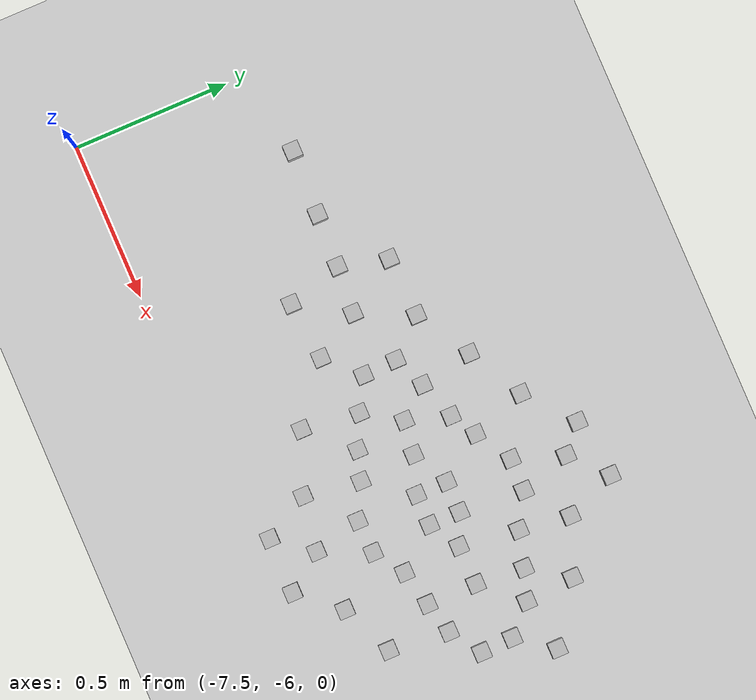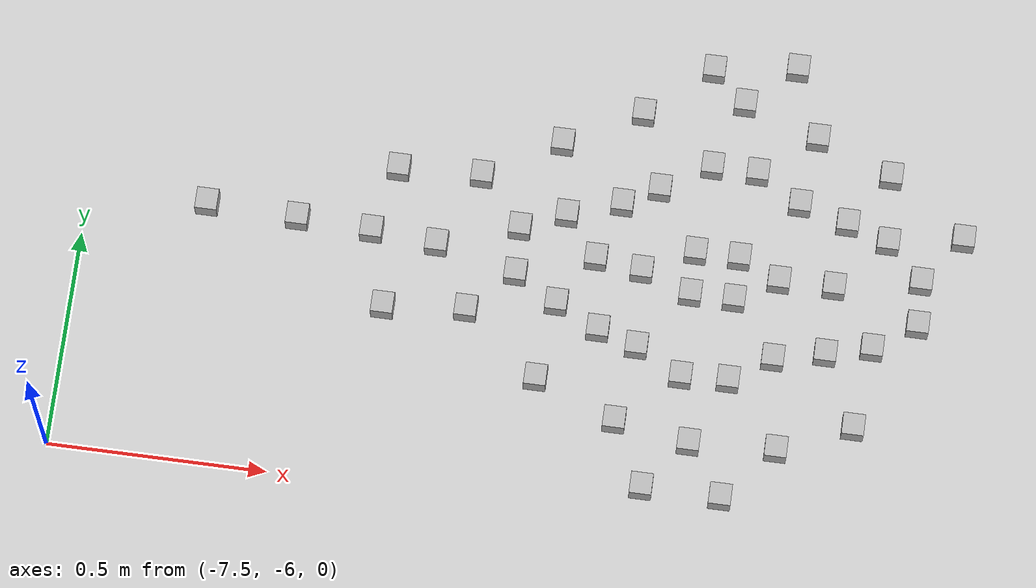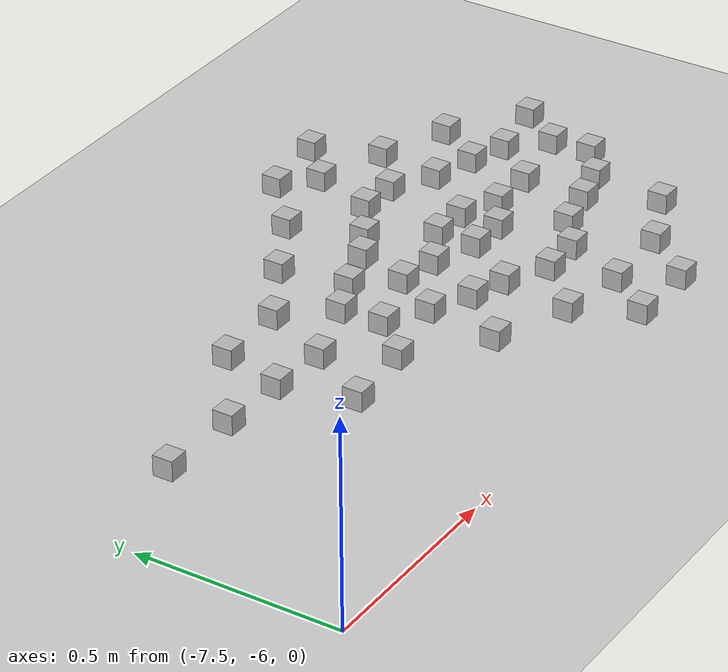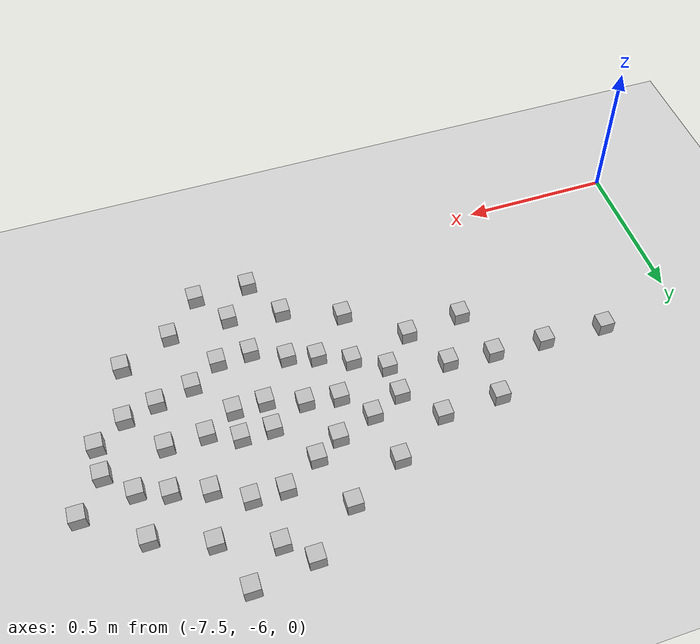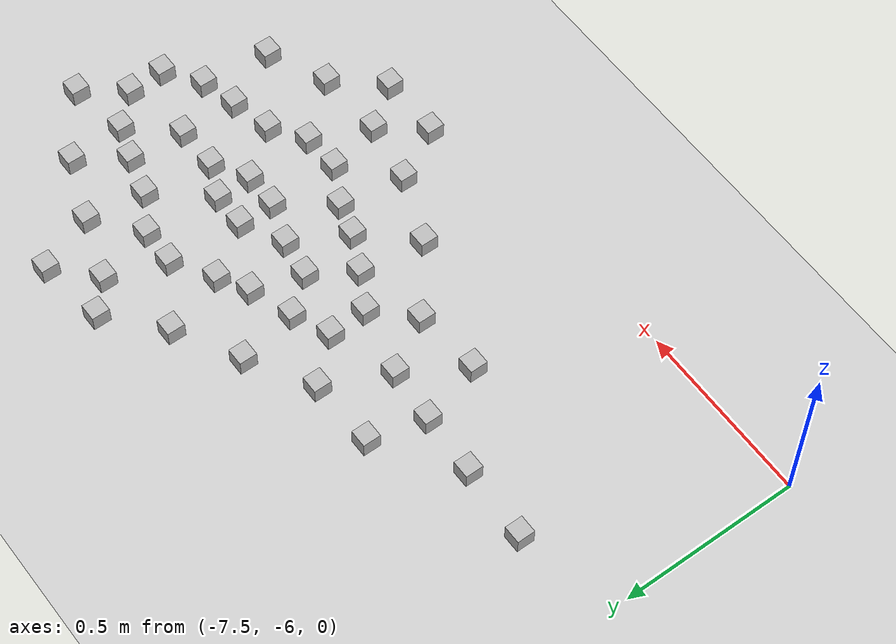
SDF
<sdf version="1.4">
 <world name="default">
  <model name="ground_plane">
   <static>1</static>
   <link name="link">
    <collision name="collision">
     <geometry><plane><normal>0 0 1</normal><size>100 100</size></plane></geometry>
     <surface><friction><ode><mu>100</mu><mu2>50</mu2></ode></friction></surface>
    </collision>
    <visual name="visual">
     <cast_shadows>0</cast_shadows>
     <geometry><plane><normal>0 0 1</normal><size>100 100</size></plane></geometry>
     <material>
      <script><uri>file://media/materials/scripts/gazebo.material</uri><name>Gazebo/Grey</name></script>
     </material>
    </visual>
    <velocity_decay><linear>0</linear><angular>0</angular></velocity_decay>
   </link>
  </model>
  <model name="at3">
   <static>0</static>
   <link name="link">
    <inertial>
     <mass>0.01</mass>
     <inertia><ixx>4e-05</ixx><ixy>0</ixy><ixz>0</ixz><iyy>4e-05</iyy><iyz>0</iyz><izz>4e-05</izz></inertia>
    </inertial>
    <visual name="visual">
     <geometry><box><size>0.05 0.05 0.05</size></box></geometry>
     <material>
      <script>
       <uri>model://at0/materials/scripts</uri>
       <uri>model://at0/materials/textures</uri>
       <name>at0/Diffuse</name>
      </script>
     </material>
    </visual>
    <collision name="collision">
     <geometry><box><size>0.05 0.05 0.05</size></box></geometry>
     <surface><friction><ode><mu>0.8</mu><mu2>0.7</mu2></ode></friction></surface>
    </collision>
    <velocity_decay><linear>0</linear><angular>0</angular></velocity_decay>
   </link>
   <pose>-6.80418 -5.25218 0.025 0 -0 0</pose>
  </model>
  <model name="at5">
   <static>0</static>
   <link name="link">
    <inertial>
     <mass>0.01</mass>
     <inertia><ixx>4e-05</ixx><ixy>0</ixy><ixz>0</ixz><iyy>4e-05</iyy><iyz>0</iyz><izz>4e-05</izz></inertia>
    </inertial>
    <visual name="visual">
     <geometry><box><size>0.05 0.05 0.05</size></box></geometry>
     <material>
      <script>
       <uri>model://at0/materials/scripts</uri>
       <uri>model://at0/materials/textures</uri>
       <name>at0/Diffuse</name>
      </script>
     </material>
    </visual>
    <collision name="collision">
     <geometry><box><size>0.05 0.05 0.05</size></box></geometry>
     <surface><friction><ode><mu>0.8</mu><mu2>0.7</mu2></ode></friction></surface>
    </collision>
    <velocity_decay><linear>0</linear><angular>0</angular></velocity_decay>
   </link>
   <pose>-6.79493 -5.58281 0.025 0 -0 0</pose>
  </model>
  <model name="at7">
   <static>0</static>
   <link name="link">
    <inertial>
     <mass>0.01</mass>
     <inertia><ixx>4e-05</ixx><ixy>0</ixy><ixz>0</ixz><iyy>4e-05</iyy><iyz>0</iyz><izz>4e-05</izz></inertia>
    </inertial>
    <visual name="visual">
     <geometry><box><size>0.05 0.05 0.05</size></box></geometry>
     <material>
      <script>
       <uri>model://at0/materials/scripts</uri>
       <uri>model://at0/materials/textures</uri>
       <name>at0/Diffuse</name>
      </script>
     </material>
    </visual>
    <collision name="collision">
     <geometry><box><size>0.05 0.05 0.05</size></box></geometry>
     <surface><friction><ode><mu>0.8</mu><mu2>0.7</mu2></ode></friction></surface>
    </collision>
    <velocity_decay><linear>0</linear><angular>0</angular></velocity_decay>
   </link>
   <pose>-5.92848 -4.89245 0.025 0 -0 0</pose>
  </model>
  <model name="at15">
   <static>0</static>
   <link name="link">
    <inertial>
     <mass>0.01</mass>
     <inertia><ixx>4e-05</ixx><ixy>0</ixy><ixz>0</ixz><iyy>4e-05</iyy><iyz>0</iyz><izz>4e-05</izz></inertia>
    </inertial>
    <visual name="visual">
     <geometry><box><size>0.05 0.05 0.05</size></box></geometry>
     <material>
      <script>
       <uri>model://at0/materials/scripts</uri>
       <uri>model://at0/materials/textures</uri>
       <name>at0/Diffuse</name>
      </script>
     </material>
    </visual>
    <collision name="collision">
     <geometry><box><size>0.05 0.05 0.05</size></box></geometry>
     <surface><friction><ode><mu>0.8</mu><mu2>0.7</mu2></ode></friction></surface>
    </collision>
    <velocity_decay><linear>0</linear><angular>0</angular></velocity_decay>
   </link>
   <pose>-5.98274 -5.92643 0.025 0 -0 0</pose>
  </model>
  <model name="at21">
   <static>0</static>
   <link name="link">
    <inertial>
     <mass>0.01</mass>
     <inertia><ixx>4e-05</ixx><ixy>0</ixy><ixz>0</ixz><iyy>4e-05</iyy><iyz>0</iyz><izz>4e-05</izz></inertia>
    </inertial>
    <visual name="visual">
     <geometry><box><size>0.05 0.05 0.05</size></box></geometry>
     <material>
      <script>
       <uri>model://at0/materials/scripts</uri>
       <uri>model://at0/materials/textures</uri>
       <name>at0/Diffuse</name>
      </script>
     </material>
    </visual>
    <collision name="collision">
     <geometry><box><size>0.05 0.05 0.05</size></box></geometry>
     <surface><friction><ode><mu>0.8</mu><mu2>0.7</mu2></ode></friction></surface>
    </collision>
    <velocity_decay><linear>0</linear><angular>0</angular></velocity_decay>
   </link>
   <pose>-6.11866 -4.92044 0.025 0 -0 0</pose>
  </model>
  <model name="at29">
   <static>0</static>
   <link name="link">
    <inertial>
     <mass>0.01</mass>
     <inertia><ixx>4e-05</ixx><ixy>0</ixy><ixz>0</ixz><iyy>4e-05</iyy><iyz>0</iyz><izz>4e-05</izz></inertia>
    </inertial>
    <visual name="visual">
     <geometry><box><size>0.05 0.05 0.05</size></box></geometry>
     <material>
      <script>
       <uri>model://at0/materials/scripts</uri>
       <uri>model://at0/materials/textures</uri>
       <name>at0/Diffuse</name>
      </script>
     </material>
    </visual>
    <collision name="collision">
     <geometry><box><size>0.05 0.05 0.05</size></box></geometry>
     <surface><friction><ode><mu>0.8</mu><mu2>0.7</mu2></ode></friction></surface>
    </collision>
    <velocity_decay><linear>0</linear><angular>0</angular></velocity_decay>
   </link>
   <pose>-6.16116 -5.92584 0.025 0 -0 0</pose>
  </model>
  <model name="at31">
   <static>0</static>
   <link name="link">
    <inertial>
     <mass>0.01</mass>
     <inertia><ixx>4e-05</ixx><ixy>0</ixy><ixz>0</ixz><iyy>4e-05</iyy><iyz>0</iyz><izz>4e-05</izz></inertia>
    </inertial>
    <visual name="visual">
     <geometry><box><size>0.05 0.05 0.05</size></box></geometry>
     <material>
      <script>
       <uri>model://at0/materials/scripts</uri>
       <uri>model://at0/materials/textures</uri>
       <name>at0/Diffuse</name>
      </script>
     </material>
    </visual>
    <collision name="collision">
     <geometry><box><size>0.05 0.05 0.05</size></box></geometry>
     <surface><friction><ode><mu>0.8</mu><mu2>0.7</mu2></ode></friction></surface>
    </collision>
    <velocity_decay><linear>0</linear><angular>0</angular></velocity_decay>
   </link>
   <pose>-7.22552 -5.39313 0.025 0 -0 0</pose>
  </model>
  <model name="at40">
   <static>0</static>
   <link name="link">
    <inertial>
     <mass>0.01</mass>
     <inertia><ixx>4e-05</ixx><ixy>0</ixy><ixz>0</ixz><iyy>4e-05</iyy><iyz>0</iyz><izz>4e-05</izz></inertia>
    </inertial>
    <visual name="visual">
     <geometry><box><size>0.05 0.05 0.05</size></box></geometry>
     <material>
      <script>
       <uri>model://at0/materials/scripts</uri>
       <uri>model://at0/materials/textures</uri>
       <name>at0/Diffuse</name>
      </script>
     </material>
    </visual>
    <collision name="collision">
     <geometry><box><size>0.05 0.05 0.05</size></box></geometry>
     <surface><friction><ode><mu>0.8</mu><mu2>0.7</mu2></ode></friction></surface>
    </collision>
    <velocity_decay><linear>0</linear><angular>0</angular></velocity_decay>
   </link>
   <pose>-6.84519 -5.4073 0.025 0 -0 0</pose>
  </model>
  <model name="at48">
   <static>0</static>
   <link name="link">
    <inertial>
     <mass>0.01</mass>
     <inertia><ixx>4e-05</ixx><ixy>0</ixy><ixz>0</ixz><iyy>4e-05</iyy><iyz>0</iyz><izz>4e-05</izz></inertia>
    </inertial>
    <visual name="visual">
     <geometry><box><size>0.05 0.05 0.05</size></box></geometry>
     <material>
      <script>
       <uri>model://at0/materials/scripts</uri>
       <uri>model://at0/materials/textures</uri>
       <name>at0/Diffuse</name>
      </script>
     </material>
    </visual>
    <collision name="collision">
     <geometry><box><size>0.05 0.05 0.05</size></box></geometry>
     <surface><friction><ode><mu>0.8</mu><mu2>0.7</mu2></ode></friction></surface>
    </collision>
    <velocity_decay><linear>0</linear><angular>0</angular></velocity_decay>
   </link>
   <pose>-7.0166 -5.3999 0.025 0 -0 0</pose>
  </model>
  <model name="at144">
   <static>0</static>
   <link name="link">
    <inertial>
     <mass>0.01</mass>
     <inertia><ixx>4e-05</ixx><ixy>0</ixy><ixz>0</ixz><iyy>4e-05</iyy><iyz>0</iyz><izz>4e-05</izz></inertia>
    </inertial>
    <visual name="visual">
     <geometry><box><size>0.05 0.05 0.05</size></box></geometry>
     <material>
      <script>
       <uri>model://at0/materials/scripts</uri>
       <uri>model://at0/materials/textures</uri>
       <name>at0/Diffuse</name>
      </script>
     </material>
    </visual>
    <collision name="collision">
     <geometry><box><size>0.05 0.05 0.05</size></box></geometry>
     <surface><friction><ode><mu>0.8</mu><mu2>0.7</mu2></ode></friction></surface>
    </collision>
    <velocity_decay><linear>0</linear><angular>0</angular></velocity_decay>
   </link>
   <pose>-5.70601 -5.72583 0.025 0 -0 0</pose>
  </model>
  <model name="at145">
   <static>0</static>
   <link name="link">
    <inertial>
     <mass>0.01</mass>
     <inertia><ixx>4e-05</ixx><ixy>0</ixy><ixz>0</ixz><iyy>4e-05</iyy><iyz>0</iyz><izz>4e-05</izz></inertia>
    </inertial>
    <visual name="visual">
     <geometry><box><size>0.05 0.05 0.05</size></box></geometry>
     <material>
      <script>
       <uri>model://at0/materials/scripts</uri>
       <uri>model://at0/materials/textures</uri>
       <name>at0/Diffuse</name>
      </script>
     </material>
    </visual>
    <collision name="collision">
     <geometry><box><size>0.05 0.05 0.05</size></box></geometry>
     <surface><friction><ode><mu>0.8</mu><mu2>0.7</mu2></ode></friction></surface>
    </collision>
    <velocity_decay><linear>0</linear><angular>0</angular></velocity_decay>
   </link>
   <pose>-6.44071 -5.14201 0.025 0 -0 0</pose>
  </model>
  <model name="at146">
   <static>0</static>
   <link name="link">
    <inertial>
     <mass>0.01</mass>
     <inertia><ixx>4e-05</ixx><ixy>0</ixy><ixz>0</ixz><iyy>4e-05</iyy><iyz>0</iyz><izz>4e-05</izz></inertia>
    </inertial>
    <visual name="visual">
     <geometry><box><size>0.05 0.05 0.05</size></box></geometry>
     <material>
      <script>
       <uri>model://at0/materials/scripts</uri>
       <uri>model://at0/materials/textures</uri>
       <name>at0/Diffuse</name>
      </script>
     </material>
    </visual>
    <collision name="collision">
     <geometry><box><size>0.05 0.05 0.05</size></box></geometry>
     <surface><friction><ode><mu>0.8</mu><mu2>0.7</mu2></ode></friction></surface>
    </collision>
    <velocity_decay><linear>0</linear><angular>0</angular></velocity_decay>
   </link>
   <pose>-5.86345 -5.05395 0.025 0 -0 0</pose>
  </model>
  <model name="at147">
   <static>0</static>
   <link name="link">
    <inertial>
     <mass>0.01</mass>
     <inertia><ixx>4e-05</ixx><ixy>0</ixy><ixz>0</ixz><iyy>4e-05</iyy><iyz>0</iyz><izz>4e-05</izz></inertia>
    </inertial>
    <visual name="visual">
     <geometry><box><size>0.05 0.05 0.05</size></box></geometry>
     <material>
      <script>
       <uri>model://at0/materials/scripts</uri>
       <uri>model://at0/materials/textures</uri>
       <name>at0/Diffuse</name>
      </script>
     </material>
    </visual>
    <collision name="collision">
     <geometry><box><size>0.05 0.05 0.05</size></box></geometry>
     <surface><friction><ode><mu>0.8</mu><mu2>0.7</mu2></ode></friction></surface>
    </collision>
    <velocity_decay><linear>0</linear><angular>0</angular></velocity_decay>
   </link>
   <pose>-6.24065 -5.78046 0.025 0 -0 0</pose>
  </model>
  <model name="at148">
   <static>0</static>
   <link name="link">
    <inertial>
     <mass>0.01</mass>
     <inertia><ixx>4e-05</ixx><ixy>0</ixy><ixz>0</ixz><iyy>4e-05</iyy><iyz>0</iyz><izz>4e-05</izz></inertia>
    </inertial>
    <visual name="visual">
     <geometry><box><size>0.05 0.05 0.05</size></box></geometry>
     <material>
      <script>
       <uri>model://at0/materials/scripts</uri>
       <uri>model://at0/materials/textures</uri>
       <name>at0/Diffuse</name>
      </script>
     </material>
    </visual>
    <collision name="collision">
     <geometry><box><size>0.05 0.05 0.05</size></box></geometry>
     <surface><friction><ode><mu>0.8</mu><mu2>0.7</mu2></ode></friction></surface>
    </collision>
    <velocity_decay><linear>0</linear><angular>0</angular></velocity_decay>
   </link>
   <pose>-6.60714 -5.56484 0.025 0 -0 0</pose>
  </model>
  <model name="at152">
   <static>0</static>
   <link name="link">
    <inertial>
     <mass>0.01</mass>
     <inertia><ixx>4e-05</ixx><ixy>0</ixy><ixz>0</ixz><iyy>4e-05</iyy><iyz>0</iyz><izz>4e-05</izz></inertia>
    </inertial>
    <visual name="visual">
     <geometry><box><size>0.05 0.05 0.05</size></box></geometry>
     <material>
      <script>
       <uri>model://at0/materials/scripts</uri>
       <uri>model://at0/materials/textures</uri>
       <name>at0/Diffuse</name>
      </script>
     </material>
    </visual>
    <collision name="collision">
     <geometry><box><size>0.05 0.05 0.05</size></box></geometry>
     <surface><friction><ode><mu>0.8</mu><mu2>0.7</mu2></ode></friction></surface>
    </collision>
    <velocity_decay><linear>0</linear><angular>0</angular></velocity_decay>
   </link>
   <pose>-5.68712 -5.12281 0.025 0 -0 0</pose>
  </model>
  <model name="at153">
   <static>0</static>
   <link name="link">
    <inertial>
     <mass>0.01</mass>
     <inertia><ixx>4e-05</ixx><ixy>0</ixy><ixz>0</ixz><iyy>4e-05</iyy><iyz>0</iyz><izz>4e-05</izz></inertia>
    </inertial>
    <visual name="visual">
     <geometry><box><size>0.05 0.05 0.05</size></box></geometry>
     <material>
      <script>
       <uri>model://at0/materials/scripts</uri>
       <uri>model://at0/materials/textures</uri>
       <name>at0/Diffuse</name>
      </script>
     </material>
    </visual>
    <collision name="collision">
     <geometry><box><size>0.05 0.05 0.05</size></box></geometry>
     <surface><friction><ode><mu>0.8</mu><mu2>0.7</mu2></ode></friction></surface>
    </collision>
    <velocity_decay><linear>0</linear><angular>0</angular></velocity_decay>
   </link>
   <pose>-6.42925 -5.70537 0.025 0 -0 0</pose>
  </model>
  <model name="at154">
   <static>0</static>
   <link name="link">
    <inertial>
     <mass>0.01</mass>
     <inertia><ixx>4e-05</ixx><ixy>0</ixy><ixz>0</ixz><iyy>4e-05</iyy><iyz>0</iyz><izz>4e-05</izz></inertia>
    </inertial>
    <visual name="visual">
     <geometry><box><size>0.05 0.05 0.05</size></box></geometry>
     <material>
      <script>
       <uri>model://at0/materials/scripts</uri>
       <uri>model://at0/materials/textures</uri>
       <name>at0/Diffuse</name>
      </script>
     </material>
    </visual>
    <collision name="collision">
     <geometry><box><size>0.05 0.05 0.05</size></box></geometry>
     <surface><friction><ode><mu>0.8</mu><mu2>0.7</mu2></ode></friction></surface>
    </collision>
    <velocity_decay><linear>0</linear><angular>0</angular></velocity_decay>
   </link>
   <pose>-5.872 -5.79985 0.025 0 -0 0</pose>
  </model>
  <model name="at155">
   <static>0</static>
   <link name="link">
    <inertial>
     <mass>0.01</mass>
     <inertia><ixx>4e-05</ixx><ixy>0</ixy><ixz>0</ixz><iyy>4e-05</iyy><iyz>0</iyz><izz>4e-05</izz></inertia>
    </inertial>
    <visual name="visual">
     <geometry><box><size>0.05 0.05 0.05</size></box></geometry>
     <material>
      <script>
       <uri>model://at0/materials/scripts</uri>
       <uri>model://at0/materials/textures</uri>
       <name>at0/Diffuse</name>
      </script>
     </material>
    </visual>
    <collision name="collision">
     <geometry><box><size>0.05 0.05 0.05</size></box></geometry>
     <surface><friction><ode><mu>0.8</mu><mu2>0.7</mu2></ode></friction></surface>
    </collision>
    <velocity_decay><linear>0</linear><angular>0</angular></velocity_decay>
   </link>
   <pose>-6.61315 -5.24357 0.025 0 -0 0</pose>
  </model>
  <model name="at156">
   <static>0</static>
   <link name="link">
    <inertial>
     <mass>0.01</mass>
     <inertia><ixx>4e-05</ixx><ixy>0</ixy><ixz>0</ixz><iyy>4e-05</iyy><iyz>0</iyz><izz>4e-05</izz></inertia>
    </inertial>
    <visual name="visual">
     <geometry><box><size>0.05 0.05 0.05</size></box></geometry>
     <material>
      <script>
       <uri>model://at0/materials/scripts</uri>
       <uri>model://at0/materials/textures</uri>
       <name>at0/Diffuse</name>
      </script>
     </material>
    </visual>
    <collision name="collision">
     <geometry><box><size>0.05 0.05 0.05</size></box></geometry>
     <surface><friction><ode><mu>0.8</mu><mu2>0.7</mu2></ode></friction></surface>
    </collision>
    <velocity_decay><linear>0</linear><angular>0</angular></velocity_decay>
   </link>
   <pose>-6.26593 -5.04609 0.025 0 -0 0</pose>
  </model>
  <model name="at157">
   <static>0</static>
   <link name="link">
    <inertial>
     <mass>0.01</mass>
     <inertia><ixx>4e-05</ixx><ixy>0</ixy><ixz>0</ixz><iyy>4e-05</iyy><iyz>0</iyz><izz>4e-05</izz></inertia>
    </inertial>
    <visual name="visual">
     <geometry><box><size>0.05 0.05 0.05</size></box></geometry>
     <material>
      <script>
       <uri>model://at0/materials/scripts</uri>
       <uri>model://at0/materials/textures</uri>
       <name>at0/Diffuse</name>
      </script>
     </material>
    </visual>
    <collision name="collision">
     <geometry><box><size>0.05 0.05 0.05</size></box></geometry>
     <surface><friction><ode><mu>0.8</mu><mu2>0.7</mu2></ode></friction></surface>
    </collision>
    <velocity_decay><linear>0</linear><angular>0</angular></velocity_decay>
   </link>
   <pose>-5.50773 -5.25072 0.025 0 -0 0</pose>
  </model>
  <model name="at192">
   <static>0</static>
   <link name="link">
    <inertial>
     <mass>0.01</mass>
     <inertia><ixx>4e-05</ixx><ixy>0</ixy><ixz>0</ixz><iyy>4e-05</iyy><iyz>0</iyz><izz>4e-05</izz></inertia>
    </inertial>
    <visual name="visual">
     <geometry><box><size>0.05 0.05 0.05</size></box></geometry>
     <material>
      <script>
       <uri>model://at0/materials/scripts</uri>
       <uri>model://at0/materials/textures</uri>
       <name>at0/Diffuse</name>
      </script>
     </material>
    </visual>
    <collision name="collision">
     <geometry><box><size>0.05 0.05 0.05</size></box></geometry>
     <surface><friction><ode><mu>0.8</mu><mu2>0.7</mu2></ode></friction></surface>
    </collision>
    <velocity_decay><linear>0</linear><angular>0</angular></velocity_decay>
   </link>
   <pose>-6.50706 -5.465 0.025 0 -0 0</pose>
  </model>
  <model name="at193">
   <static>0</static>
   <link name="link">
    <inertial>
     <mass>0.01</mass>
     <inertia><ixx>4e-05</ixx><ixy>0</ixy><ixz>0</ixz><iyy>4e-05</iyy><iyz>0</iyz><izz>4e-05</izz></inertia>
    </inertial>
    <visual name="visual">
     <geometry><box><size>0.05 0.05 0.05</size></box></geometry>
     <material>
      <script>
       <uri>model://at0/materials/scripts</uri>
       <uri>model://at0/materials/textures</uri>
       <name>at0/Diffuse</name>
      </script>
     </material>
    </visual>
    <collision name="collision">
     <geometry><box><size>0.05 0.05 0.05</size></box></geometry>
     <surface><friction><ode><mu>0.8</mu><mu2>0.7</mu2></ode></friction></surface>
    </collision>
    <velocity_decay><linear>0</linear><angular>0</angular></velocity_decay>
   </link>
   <pose>-5.9901 -5.1543 0.025 0 -0 0</pose>
  </model>
  <model name="at194">
   <static>0</static>
   <link name="link">
    <inertial>
     <mass>0.01</mass>
     <inertia><ixx>4e-05</ixx><ixy>0</ixy><ixz>0</ixz><iyy>4e-05</iyy><iyz>0</iyz><izz>4e-05</izz></inertia>
    </inertial>
    <visual name="visual">
     <geometry><box><size>0.05 0.05 0.05</size></box></geometry>
     <material>
      <script>
       <uri>model://at0/materials/scripts</uri>
       <uri>model://at0/materials/textures</uri>
       <name>at0/Diffuse</name>
      </script>
     </material>
    </visual>
    <collision name="collision">
     <geometry><box><size>0.05 0.05 0.05</size></box></geometry>
     <surface><friction><ode><mu>0.8</mu><mu2>0.7</mu2></ode></friction></surface>
    </collision>
    <velocity_decay><linear>0</linear><angular>0</angular></velocity_decay>
   </link>
   <pose>-6.09464 -5.1528 0.025 0 -0 0</pose>
  </model>
  <model name="at195">
   <static>0</static>
   <link name="link">
    <inertial>
     <mass>0.01</mass>
     <inertia><ixx>4e-05</ixx><ixy>0</ixy><ixz>0</ixz><iyy>4e-05</iyy><iyz>0</iyz><izz>4e-05</izz></inertia>
    </inertial>
    <visual name="visual">
     <geometry><box><size>0.05 0.05 0.05</size></box></geometry>
     <material>
      <script>
       <uri>model://at0/materials/scripts</uri>
       <uri>model://at0/materials/textures</uri>
       <name>at0/Diffuse</name>
      </script>
     </material>
    </visual>
    <collision name="collision">
     <geometry><box><size>0.05 0.05 0.05</size></box></geometry>
     <surface><friction><ode><mu>0.8</mu><mu2>0.7</mu2></ode></friction></surface>
    </collision>
    <velocity_decay><linear>0</linear><angular>0</angular></velocity_decay>
   </link>
   <pose>-6.22366 -5.42043 0.025 0 -0 0</pose>
  </model>
  <model name="at196">
   <static>0</static>
   <link name="link">
    <inertial>
     <mass>0.01</mass>
     <inertia><ixx>4e-05</ixx><ixy>0</ixy><ixz>0</ixz><iyy>4e-05</iyy><iyz>0</iyz><izz>4e-05</izz></inertia>
    </inertial>
    <visual name="visual">
     <geometry><box><size>0.05 0.05 0.05</size></box></geometry>
     <material>
      <script>
       <uri>model://at0/materials/scripts</uri>
       <uri>model://at0/materials/textures</uri>
       <name>at0/Diffuse</name>
      </script>
     </material>
    </visual>
    <collision name="collision">
     <geometry><box><size>0.05 0.05 0.05</size></box></geometry>
     <surface><friction><ode><mu>0.8</mu><mu2>0.7</mu2></ode></friction></surface>
    </collision>
    <velocity_decay><linear>0</linear><angular>0</angular></velocity_decay>
   </link>
   <pose>-5.91225 -5.40379 0.025 0 -0 0</pose>
  </model>
  <model name="at197">
   <static>0</static>
   <link name="link">
    <inertial>
     <mass>0.01</mass>
     <inertia><ixx>4e-05</ixx><ixy>0</ixy><ixz>0</ixz><iyy>4e-05</iyy><iyz>0</iyz><izz>4e-05</izz></inertia>
    </inertial>
    <visual name="visual">
     <geometry><box><size>0.05 0.05 0.05</size></box></geometry>
     <material>
      <script>
       <uri>model://at0/materials/scripts</uri>
       <uri>model://at0/materials/textures</uri>
       <name>at0/Diffuse</name>
      </script>
     </material>
    </visual>
    <collision name="collision">
     <geometry><box><size>0.05 0.05 0.05</size></box></geometry>
     <surface><friction><ode><mu>0.8</mu><mu2>0.7</mu2></ode></friction></surface>
    </collision>
    <velocity_decay><linear>0</linear><angular>0</angular></velocity_decay>
   </link>
   <pose>-6.10562 -5.65694 0.025 0 -0 0</pose>
  </model>
  <model name="at198">
   <static>0</static>
   <link name="link">
    <inertial>
     <mass>0.01</mass>
     <inertia><ixx>4e-05</ixx><ixy>0</ixy><ixz>0</ixz><iyy>4e-05</iyy><iyz>0</iyz><izz>4e-05</izz></inertia>
    </inertial>
    <visual name="visual">
     <geometry><box><size>0.05 0.05 0.05</size></box></geometry>
     <material>
      <script>
       <uri>model://at0/materials/scripts</uri>
       <uri>model://at0/materials/textures</uri>
       <name>at0/Diffuse</name>
      </script>
     </material>
    </visual>
    <collision name="collision">
     <geometry><box><size>0.05 0.05 0.05</size></box></geometry>
     <surface><friction><ode><mu>0.8</mu><mu2>0.7</mu2></ode></friction></surface>
    </collision>
    <velocity_decay><linear>0</linear><angular>0</angular></velocity_decay>
   </link>
   <pose>-5.99808 -5.65203 0.025 0 -0 0</pose>
  </model>
  <model name="at199">
   <static>0</static>
   <link name="link">
    <inertial>
     <mass>0.01</mass>
     <inertia><ixx>4e-05</ixx><ixy>0</ixy><ixz>0</ixz><iyy>4e-05</iyy><iyz>0</iyz><izz>4e-05</izz></inertia>
    </inertial>
    <visual name="visual">
     <geometry><box><size>0.05 0.05 0.05</size></box></geometry>
     <material>
      <script>
       <uri>model://at0/materials/scripts</uri>
       <uri>model://at0/materials/textures</uri>
       <name>at0/Diffuse</name>
      </script>
     </material>
    </visual>
    <collision name="collision">
     <geometry><box><size>0.05 0.05 0.05</size></box></geometry>
     <surface><friction><ode><mu>0.8</mu><mu2>0.7</mu2></ode></friction></surface>
    </collision>
    <velocity_decay><linear>0</linear><angular>0</angular></velocity_decay>
   </link>
   <pose>-5.58845 -5.46755 0.025 0 -0 0</pose>
  </model>
  <model name="at200">
   <static>0</static>
   <link name="link">
    <inertial>
     <mass>0.01</mass>
     <inertia><ixx>4e-05</ixx><ixy>0</ixy><ixz>0</ixz><iyy>4e-05</iyy><iyz>0</iyz><izz>4e-05</izz></inertia>
    </inertial>
    <visual name="visual">
     <geometry><box><size>0.05 0.05 0.05</size></box></geometry>
     <material>
      <script>
       <uri>model://at0/materials/scripts</uri>
       <uri>model://at0/materials/textures</uri>
       <name>at0/Diffuse</name>
      </script>
     </material>
    </visual>
    <collision name="collision">
     <geometry><box><size>0.05 0.05 0.05</size></box></geometry>
     <surface><friction><ode><mu>0.8</mu><mu2>0.7</mu2></ode></friction></surface>
    </collision>
    <velocity_decay><linear>0</linear><angular>0</angular></velocity_decay>
   </link>
   <pose>-6.40597 -5.52307 0.025 0 -0 0</pose>
  </model>
  <model name="at201">
   <static>0</static>
   <link name="link">
    <inertial>
     <mass>0.01</mass>
     <inertia><ixx>4e-05</ixx><ixy>0</ixy><ixz>0</ixz><iyy>4e-05</iyy><iyz>0</iyz><izz>4e-05</izz></inertia>
    </inertial>
    <visual name="visual">
     <geometry><box><size>0.05 0.05 0.05</size></box></geometry>
     <material>
      <script>
       <uri>model://at0/materials/scripts</uri>
       <uri>model://at0/materials/textures</uri>
       <name>at0/Diffuse</name>
      </script>
     </material>
    </visual>
    <collision name="collision">
     <geometry><box><size>0.05 0.05 0.05</size></box></geometry>
     <surface><friction><ode><mu>0.8</mu><mu2>0.7</mu2></ode></friction></surface>
    </collision>
    <velocity_decay><linear>0</linear><angular>0</angular></velocity_decay>
   </link>
   <pose>-6.30467 -5.57204 0.025 0 -0 0</pose>
  </model>
  <model name="at202">
   <static>0</static>
   <link name="link">
    <inertial>
     <mass>0.01</mass>
     <inertia><ixx>4e-05</ixx><ixy>0</ixy><ixz>0</ixz><iyy>4e-05</iyy><iyz>0</iyz><izz>4e-05</izz></inertia>
    </inertial>
    <visual name="visual">
     <geometry><box><size>0.05 0.05 0.05</size></box></geometry>
     <material>
      <script>
       <uri>model://at0/materials/scripts</uri>
       <uri>model://at0/materials/textures</uri>
       <name>at0/Diffuse</name>
      </script>
     </material>
    </visual>
    <collision name="collision">
     <geometry><box><size>0.05 0.05 0.05</size></box></geometry>
     <surface><friction><ode><mu>0.8</mu><mu2>0.7</mu2></ode></friction></surface>
    </collision>
    <velocity_decay><linear>0</linear><angular>0</angular></velocity_decay>
   </link>
   <pose>-6.21296 -5.60051 0.025 0 -0 0</pose>
  </model>
  <model name="at203">
   <static>0</static>
   <link name="link">
    <inertial>
     <mass>0.01</mass>
     <inertia><ixx>4e-05</ixx><ixy>0</ixy><ixz>0</ixz><iyy>4e-05</iyy><iyz>0</iyz><izz>4e-05</izz></inertia>
    </inertial>
    <visual name="visual">
     <geometry><box><size>0.05 0.05 0.05</size></box></geometry>
     <material>
      <script>
       <uri>model://at0/materials/scripts</uri>
       <uri>model://at0/materials/textures</uri>
       <name>at0/Diffuse</name>
      </script>
     </material>
    </visual>
    <collision name="collision">
     <geometry><box><size>0.05 0.05 0.05</size></box></geometry>
     <surface><friction><ode><mu>0.8</mu><mu2>0.7</mu2></ode></friction></surface>
    </collision>
    <velocity_decay><linear>0</linear><angular>0</angular></velocity_decay>
   </link>
   <pose>-6.10765 -5.46082 0.025 0 -0 0</pose>
  </model>
  <model name="at204">
   <static>0</static>
   <link name="link">
    <inertial>
     <mass>0.01</mass>
     <inertia><ixx>4e-05</ixx><ixy>0</ixy><ixz>0</ixz><iyy>4e-05</iyy><iyz>0</iyz><izz>4e-05</izz></inertia>
    </inertial>
    <visual name="visual">
     <geometry><box><size>0.05 0.05 0.05</size></box></geometry>
     <material>
      <script>
       <uri>model://at0/materials/scripts</uri>
       <uri>model://at0/materials/textures</uri>
       <name>at0/Diffuse</name>
      </script>
     </material>
    </visual>
    <collision name="collision">
     <geometry><box><size>0.05 0.05 0.05</size></box></geometry>
     <surface><friction><ode><mu>0.8</mu><mu2>0.7</mu2></ode></friction></surface>
    </collision>
    <velocity_decay><linear>0</linear><angular>0</angular></velocity_decay>
   </link>
   <pose>-6.00765 -5.46082 0.025 0 -0 0</pose>
  </model>
  <model name="at205">
   <static>0</static>
   <link name="link">
    <inertial>
     <mass>0.01</mass>
     <inertia><ixx>4e-05</ixx><ixy>0</ixy><ixz>0</ixz><iyy>4e-05</iyy><iyz>0</iyz><izz>4e-05</izz></inertia>
    </inertial>
    <visual name="visual">
     <geometry><box><size>0.05 0.05 0.05</size></box></geometry>
     <material>
      <script>
       <uri>model://at0/materials/scripts</uri>
       <uri>model://at0/materials/textures</uri>
       <name>at0/Diffuse</name>
      </script>
     </material>
    </visual>
    <collision name="collision">
     <geometry><box><size>0.05 0.05 0.05</size></box></geometry>
     <surface><friction><ode><mu>0.8</mu><mu2>0.7</mu2></ode></friction></surface>
    </collision>
    <velocity_decay><linear>0</linear><angular>0</angular></velocity_decay>
   </link>
   <pose>-5.90427 -5.58815 0.025 0 -0 0</pose>
  </model>
  <model name="at206">
   <static>0</static>
   <link name="link">
    <inertial>
     <mass>0.01</mass>
     <inertia><ixx>4e-05</ixx><ixy>0</ixy><ixz>0</ixz><iyy>4e-05</iyy><iyz>0</iyz><izz>4e-05</izz></inertia>
    </inertial>
    <visual name="visual">
     <geometry><box><size>0.05 0.05 0.05</size></box></geometry>
     <material>
      <script>
       <uri>model://at0/materials/scripts</uri>
       <uri>model://at0/materials/textures</uri>
       <name>at0/Diffuse</name>
      </script>
     </material>
    </visual>
    <collision name="collision">
     <geometry><box><size>0.05 0.05 0.05</size></box></geometry>
     <surface><friction><ode><mu>0.8</mu><mu2>0.7</mu2></ode></friction></surface>
    </collision>
    <velocity_decay><linear>0</linear><angular>0</angular></velocity_decay>
   </link>
   <pose>-5.78808 -5.5617 0.025 0 -0 0</pose>
  </model>
  <model name="at207">
   <static>0</static>
   <link name="link">
    <inertial>
     <mass>0.01</mass>
     <inertia><ixx>4e-05</ixx><ixy>0</ixy><ixz>0</ixz><iyy>4e-05</iyy><iyz>0</iyz><izz>4e-05</izz></inertia>
    </inertial>
    <visual name="visual">
     <geometry><box><size>0.05 0.05 0.05</size></box></geometry>
     <material>
      <script>
       <uri>model://at0/materials/scripts</uri>
       <uri>model://at0/materials/textures</uri>
       <name>at0/Diffuse</name>
      </script>
     </material>
    </visual>
    <collision name="collision">
     <geometry><box><size>0.05 0.05 0.05</size></box></geometry>
     <surface><friction><ode><mu>0.8</mu><mu2>0.7</mu2></ode></friction></surface>
    </collision>
    <velocity_decay><linear>0</linear><angular>0</angular></velocity_decay>
   </link>
   <pose>-5.68482 -5.53513 0.025 0 -0 0</pose>
  </model>
  <model name="at208">
   <static>0</static>
   <link name="link">
    <inertial>
     <mass>0.01</mass>
     <inertia><ixx>4e-05</ixx><ixy>0</ixy><ixz>0</ixz><iyy>4e-05</iyy><iyz>0</iyz><izz>4e-05</izz></inertia>
    </inertial>
    <visual name="visual">
     <geometry><box><size>0.05 0.05 0.05</size></box></geometry>
     <material>
      <script>
       <uri>model://at0/materials/scripts</uri>
       <uri>model://at0/materials/textures</uri>
       <name>at0/Diffuse</name>
      </script>
     </material>
    </visual>
    <collision name="collision">
     <geometry><box><size>0.05 0.05 0.05</size></box></geometry>
     <surface><friction><ode><mu>0.8</mu><mu2>0.7</mu2></ode></friction></surface>
    </collision>
    <velocity_decay><linear>0</linear><angular>0</angular></velocity_decay>
   </link>
   <pose>-6.40895 -5.31101 0.025 0 -0 0</pose>
  </model>
  <model name="at209">
   <static>0</static>
   <link name="link">
    <inertial>
     <mass>0.01</mass>
     <inertia><ixx>4e-05</ixx><ixy>0</ixy><ixz>0</ixz><iyy>4e-05</iyy><iyz>0</iyz><izz>4e-05</izz></inertia>
    </inertial>
    <visual name="visual">
     <geometry><box><size>0.05 0.05 0.05</size></box></geometry>
     <material>
      <script>
       <uri>model://at0/materials/scripts</uri>
       <uri>model://at0/materials/textures</uri>
       <name>at0/Diffuse</name>
      </script>
     </material>
    </visual>
    <collision name="collision">
     <geometry><box><size>0.05 0.05 0.05</size></box></geometry>
     <surface><friction><ode><mu>0.8</mu><mu2>0.7</mu2></ode></friction></surface>
    </collision>
    <velocity_decay><linear>0</linear><angular>0</angular></velocity_decay>
   </link>
   <pose>-6.2872 -5.26861 0.025 0 -0 0</pose>
  </model>
  <model name="at210">
   <static>0</static>
   <link name="link">
    <inertial>
     <mass>0.01</mass>
     <inertia><ixx>4e-05</ixx><ixy>0</ixy><ixz>0</ixz><iyy>4e-05</iyy><iyz>0</iyz><izz>4e-05</izz></inertia>
    </inertial>
    <visual name="visual">
     <geometry><box><size>0.05 0.05 0.05</size></box></geometry>
     <material>
      <script>
       <uri>model://at0/materials/scripts</uri>
       <uri>model://at0/materials/textures</uri>
       <name>at0/Diffuse</name>
      </script>
     </material>
    </visual>
    <collision name="collision">
     <geometry><box><size>0.05 0.05 0.05</size></box></geometry>
     <surface><friction><ode><mu>0.8</mu><mu2>0.7</mu2></ode></friction></surface>
    </collision>
    <velocity_decay><linear>0</linear><angular>0</angular></velocity_decay>
   </link>
   <pose>-6.20682 -5.22167 0.025 0 -0 0</pose>
  </model>
  <model name="at211">
   <static>0</static>
   <link name="link">
    <inertial>
     <mass>0.01</mass>
     <inertia><ixx>4e-05</ixx><ixy>0</ixy><ixz>0</ixz><iyy>4e-05</iyy><iyz>0</iyz><izz>4e-05</izz></inertia>
    </inertial>
    <visual name="visual">
     <geometry><box><size>0.05 0.05 0.05</size></box></geometry>
     <material>
      <script>
       <uri>model://at0/materials/scripts</uri>
       <uri>model://at0/materials/textures</uri>
       <name>at0/Diffuse</name>
      </script>
     </material>
    </visual>
    <collision name="collision">
     <geometry><box><size>0.05 0.05 0.05</size></box></geometry>
     <surface><friction><ode><mu>0.8</mu><mu2>0.7</mu2></ode></friction></surface>
    </collision>
    <velocity_decay><linear>0</linear><angular>0</angular></velocity_decay>
   </link>
   <pose>-6.10765 -5.36082 0.025 0 -0 0</pose>
  </model>
  <model name="at212">
   <static>0</static>
   <link name="link">
    <inertial>
     <mass>0.01</mass>
     <inertia><ixx>4e-05</ixx><ixy>0</ixy><ixz>0</ixz><iyy>4e-05</iyy><iyz>0</iyz><izz>4e-05</izz></inertia>
    </inertial>
    <visual name="visual">
     <geometry><box><size>0.05 0.05 0.05</size></box></geometry>
     <material>
      <script>
       <uri>model://at0/materials/scripts</uri>
       <uri>model://at0/materials/textures</uri>
       <name>at0/Diffuse</name>
      </script>
     </material>
    </visual>
    <collision name="collision">
     <geometry><box><size>0.05 0.05 0.05</size></box></geometry>
     <surface><friction><ode><mu>0.8</mu><mu2>0.7</mu2></ode></friction></surface>
    </collision>
    <velocity_decay><linear>0</linear><angular>0</angular></velocity_decay>
   </link>
   <pose>-6.00765 -5.36082 0.025 0 -0 0</pose>
  </model>
  <model name="at213">
   <static>0</static>
   <link name="link">
    <inertial>
     <mass>0.01</mass>
     <inertia><ixx>4e-05</ixx><ixy>0</ixy><ixz>0</ixz><iyy>4e-05</iyy><iyz>0</iyz><izz>4e-05</izz></inertia>
    </inertial>
    <visual name="visual">
     <geometry><box><size>0.05 0.05 0.05</size></box></geometry>
     <material>
      <script>
       <uri>model://at0/materials/scripts</uri>
       <uri>model://at0/materials/textures</uri>
       <name>at0/Diffuse</name>
      </script>
     </material>
    </visual>
    <collision name="collision">
     <geometry><box><size>0.05 0.05 0.05</size></box></geometry>
     <surface><friction><ode><mu>0.8</mu><mu2>0.7</mu2></ode></friction></surface>
    </collision>
    <velocity_decay><linear>0</linear><angular>0</angular></velocity_decay>
   </link>
   <pose>-5.88589 -5.21591 0.025 0 -0 0</pose>
  </model>
  <model name="at214">
   <static>0</static>
   <link name="link">
    <inertial>
     <mass>0.01</mass>
     <inertia><ixx>4e-05</ixx><ixy>0</ixy><ixz>0</ixz><iyy>4e-05</iyy><iyz>0</iyz><izz>4e-05</izz></inertia>
    </inertial>
    <visual name="visual">
     <geometry><box><size>0.05 0.05 0.05</size></box></geometry>
     <material>
      <script>
       <uri>model://at0/materials/scripts</uri>
       <uri>model://at0/materials/textures</uri>
       <name>at0/Diffuse</name>
      </script>
     </material>
    </visual>
    <collision name="collision">
     <geometry><box><size>0.05 0.05 0.05</size></box></geometry>
     <surface><friction><ode><mu>0.8</mu><mu2>0.7</mu2></ode></friction></surface>
    </collision>
    <velocity_decay><linear>0</linear><angular>0</angular></velocity_decay>
   </link>
   <pose>-5.77295 -5.24772 0.025 0 -0 0</pose>
  </model>
  <model name="at215">
   <static>0</static>
   <link name="link">
    <inertial>
     <mass>0.01</mass>
     <inertia><ixx>4e-05</ixx><ixy>0</ixy><ixz>0</ixz><iyy>4e-05</iyy><iyz>0</iyz><izz>4e-05</izz></inertia>
    </inertial>
    <visual name="visual">
     <geometry><box><size>0.05 0.05 0.05</size></box></geometry>
     <material>
      <script>
       <uri>model://at0/materials/scripts</uri>
       <uri>model://at0/materials/textures</uri>
       <name>at0/Diffuse</name>
      </script>
     </material>
    </visual>
    <collision name="collision">
     <geometry><box><size>0.05 0.05 0.05</size></box></geometry>
     <surface><friction><ode><mu>0.8</mu><mu2>0.7</mu2></ode></friction></surface>
    </collision>
    <velocity_decay><linear>0</linear><angular>0</angular></velocity_decay>
   </link>
   <pose>-5.67671 -5.28008 0.025 0 -0 0</pose>
  </model>
  <model name="at216">
   <static>0</static>
   <link name="link">
    <inertial>
     <mass>0.01</mass>
     <inertia><ixx>4e-05</ixx><ixy>0</ixy><ixz>0</ixz><iyy>4e-05</iyy><iyz>0</iyz><izz>4e-05</izz></inertia>
    </inertial>
    <visual name="visual">
     <geometry><box><size>0.05 0.05 0.05</size></box></geometry>
     <material>
      <script>
       <uri>model://at0/materials/scripts</uri>
       <uri>model://at0/materials/textures</uri>
       <name>at0/Diffuse</name>
      </script>
     </material>
    </visual>
    <collision name="collision">
     <geometry><box><size>0.05 0.05 0.05</size></box></geometry>
     <surface><friction><ode><mu>0.8</mu><mu2>0.7</mu2></ode></friction></surface>
    </collision>
    <velocity_decay><linear>0</linear><angular>0</angular></velocity_decay>
   </link>
   <pose>-6.5114 -5.356 0.025 0 -0 0</pose>
  </model>
  <model name="at218">
   <static>0</static>
   <link name="link">
    <inertial>
     <mass>0.01</mass>
     <inertia><ixx>4e-05</ixx><ixy>0</ixy><ixz>0</ixz><iyy>4e-05</iyy><iyz>0</iyz><izz>4e-05</izz></inertia>
    </inertial>
    <visual name="visual">
     <geometry><box><size>0.05 0.05 0.05</size></box></geometry>
     <material>
      <script>
       <uri>model://at0/materials/scripts</uri>
       <uri>model://at0/materials/textures</uri>
       <name>at0/Diffuse</name>
      </script>
     </material>
    </visual>
    <collision name="collision">
     <geometry><box><size>0.05 0.05 0.05</size></box></geometry>
     <surface><friction><ode><mu>0.8</mu><mu2>0.7</mu2></ode></friction></surface>
    </collision>
    <velocity_decay><linear>0</linear><angular>0</angular></velocity_decay>
   </link>
   <pose>-6.69437 -5.41959 0.025 0 -0 0</pose>
  </model>
  <model name="at219">
   <static>0</static>
   <link name="link">
    <inertial>
     <mass>0.01</mass>
     <inertia><ixx>4e-05</ixx><ixy>0</ixy><ixz>0</ixz><iyy>4e-05</iyy><iyz>0</iyz><izz>4e-05</izz></inertia>
    </inertial>
    <visual name="visual">
     <geometry><box><size>0.05 0.05 0.05</size></box></geometry>
     <material>
      <script>
       <uri>model://at0/materials/scripts</uri>
       <uri>model://at0/materials/textures</uri>
       <name>at0/Diffuse</name>
      </script>
     </material>
    </visual>
    <collision name="collision">
     <geometry><box><size>0.05 0.05 0.05</size></box></geometry>
     <surface><friction><ode><mu>0.8</mu><mu2>0.7</mu2></ode></friction></surface>
    </collision>
    <velocity_decay><linear>0</linear><angular>0</angular></velocity_decay>
   </link>
   <pose>-6.33054 -5.4052 0.025 0 -0 0</pose>
  </model>
  <model name="at220">
   <static>0</static>
   <link name="link">
    <inertial>
     <mass>0.01</mass>
     <inertia><ixx>4e-05</ixx><ixy>0</ixy><ixz>0</ixz><iyy>4e-05</iyy><iyz>0</iyz><izz>4e-05</izz></inertia>
    </inertial>
    <visual name="visual">
     <geometry><box><size>0.05 0.05 0.05</size></box></geometry>
     <material>
      <script>
       <uri>model://at0/materials/scripts</uri>
       <uri>model://at0/materials/textures</uri>
       <name>at0/Diffuse</name>
      </script>
     </material>
    </visual>
    <collision name="collision">
     <geometry><box><size>0.05 0.05 0.05</size></box></geometry>
     <surface><friction><ode><mu>0.8</mu><mu2>0.7</mu2></ode></friction></surface>
    </collision>
    <velocity_decay><linear>0</linear><angular>0</angular></velocity_decay>
   </link>
   <pose>-5.78635 -5.40197 0.025 0 -0 0</pose>
  </model>
  <model name="at221">
   <static>0</static>
   <link name="link">
    <inertial>
     <mass>0.01</mass>
     <inertia><ixx>4e-05</ixx><ixy>0</ixy><ixz>0</ixz><iyy>4e-05</iyy><iyz>0</iyz><izz>4e-05</izz></inertia>
    </inertial>
    <visual name="visual">
     <geometry><box><size>0.05 0.05 0.05</size></box></geometry>
     <material>
      <script>
       <uri>model://at0/materials/scripts</uri>
       <uri>model://at0/materials/textures</uri>
       <name>at0/Diffuse</name>
      </script>
     </material>
    </visual>
    <collision name="collision">
     <geometry><box><size>0.05 0.05 0.05</size></box></geometry>
     <surface><friction><ode><mu>0.8</mu><mu2>0.7</mu2></ode></friction></surface>
    </collision>
    <velocity_decay><linear>0</linear><angular>0</angular></velocity_decay>
   </link>
   <pose>-6.03835 -4.99258 0.025 0 -0 0</pose>
  </model>
  <model name="at222">
   <static>0</static>
   <link name="link">
    <inertial>
     <mass>0.01</mass>
     <inertia><ixx>4e-05</ixx><ixy>0</ixy><ixz>0</ixz><iyy>4e-05</iyy><iyz>0</iyz><izz>4e-05</izz></inertia>
    </inertial>
    <visual name="visual">
     <geometry><box><size>0.05 0.05 0.05</size></box></geometry>
     <material>
      <script>
       <uri>model://at0/materials/scripts</uri>
       <uri>model://at0/materials/textures</uri>
       <name>at0/Diffuse</name>
      </script>
     </material>
    </visual>
    <collision name="collision">
     <geometry><box><size>0.05 0.05 0.05</size></box></geometry>
     <surface><friction><ode><mu>0.8</mu><mu2>0.7</mu2></ode></friction></surface>
    </collision>
    <velocity_decay><linear>0</linear><angular>0</angular></velocity_decay>
   </link>
   <pose>-6.06859 -5.80975 0.025 0 -0 0</pose>
  </model>
  <model name="at223">
   <static>0</static>
   <link name="link">
    <inertial>
     <mass>0.01</mass>
     <inertia><ixx>4e-05</ixx><ixy>0</ixy><ixz>0</ixz><iyy>4e-05</iyy><iyz>0</iyz><izz>4e-05</izz></inertia>
    </inertial>
    <visual name="visual">
     <geometry><box><size>0.05 0.05 0.05</size></box></geometry>
     <material>
      <script>
       <uri>model://at0/materials/scripts</uri>
       <uri>model://at0/materials/textures</uri>
       <name>at0/Diffuse</name>
      </script>
     </material>
    </visual>
    <collision name="collision">
     <geometry><box><size>0.05 0.05 0.05</size></box></geometry>
     <surface><friction><ode><mu>0.8</mu><mu2>0.7</mu2></ode></friction></surface>
    </collision>
    <velocity_decay><linear>0</linear><angular>0</angular></velocity_decay>
   </link>
   <pose>-5.59193 -5.36464 0.025 0 -0 0</pose>
  </model>
 </world>
</sdf>
